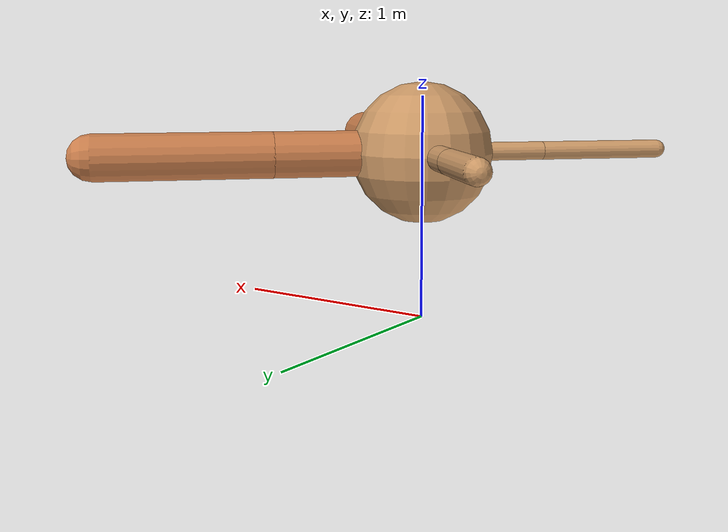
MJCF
<?xml version="1.0" ?>
<mujoco model="ant">

	<compiler angle="degree" coordinate="local" inertiafromgeom="true"/>

	<option integrator="RK4" timestep="0.01"/>

	<custom>

		<numeric data="0.0 0.0 0.55 1.0 0.0 0.0 0.0 0.0 1.0 0.0 -1.0 0.0 -1.0 0.0 1.0" name="init_qpos"/>

	</custom>

	<default>

		<joint armature="1" damping="1" limited="true"/>

		<geom conaffinity="0" condim="3" density="5.0" friction="1.5 0.1 0.1" margin="0.01" rgba="0.8 0.6 0.4 1"/>

	</default>

	<worldbody>

		<body name="torso" pos="0 0 0.75">

			<geom name="torso_geom" pos="0 0 0" size="0.31623673641234973" type="sphere"/>

			<!--joint armature="0" damping="0" limited="false" margin="0.01" name="root" pos="0 0 0" type="free"/-->

			<body name="front_left_leg" pos="0 0 0">

				<geom fromto="0 0 0 0.2 0.2 0" name="aux_1_geom" size="0.10190697522418814" type="capsule" rgba=".8 .5 .3 1"/>

				<body name="aux_1" pos="0.2 0.2 0">

					<joint axis="0 0 1" name="hip_1" pos="0.0 0.0 0.0" range="-40 40" type="hinge"/>

					<geom fromto="0 0 0 0.26904939679075607 0.26904939679075607 0" name="left_leg_geom" size="0.10190697522418814" type="capsule" rgba=".8 .5 .3 1"/>

					<body pos="0.26904939679075607 0.26904939679075607 0" name="front_left_foot">

						<joint axis="-1 1 0" name="ankle_1" pos="0.0 0.0 0.0" range="30 100" type="hinge"/>

						<geom fromto="0 0 0 0.5380987935815121 0.5380987935815121 0" name="left_ankle_geom" size="0.10190697522418814" type="capsule" rgba=".8 .5 .3 1"/>

					</body>

				</body>

			</body>

			<body name="front_right_leg" pos="0 0 0">

				<geom fromto="0 0 0 -0.2 0.2 0" name="aux_2_geom" size="0.054937765121910724" type="capsule"/>

				<body name="aux_2" pos="-0.2 0.2 0">

					<joint axis="0 0 1" name="hip_2" pos="0.0 0.0 0.0" range="-40 40" type="hinge"/>

					<geom fromto="0 0 0 -0.1334522549082669 0.1334522549082669 0" name="right_leg_geom" size="0.054937765121910724" type="capsule"/>

					<body pos="-0.1334522549082669 0.1334522549082669 0" name="front_right_foot">

						<joint axis="1 1 0" name="ankle_2" pos="0.0 0.0 0.0" range="-100 -30" type="hinge"/>

						<geom fromto="0 0 0 -0.2669045098165338 0.2669045098165338 0" name="right_ankle_geom" size="0.054937765121910724" type="capsule"/>

					</body>

				</body>

			</body>

			<body name="left_back_leg" pos="0 0 0">

				<geom fromto="0 0 0 -0.2 -0.2 0" name="aux_3_geom" size="0.04139818240246219" type="capsule"/>

				<body name="aux_3" pos="-0.2 -0.2 0">

					<joint axis="0 0 1" name="hip_3" pos="0.0 0.0 0.0" range="-40 40" type="hinge"/>

					<geom fromto="0 0 0 -0.19778050673637654 -0.19778050673637654 0" name="back_leg_geom" size="0.04139818240246219" type="capsule"/>

					<body pos="-0.19778050673637654 -0.19778050673637654 0" name="left_back_foot">

						<joint axis="-1 1 0" name="ankle_3" pos="0.0 0.0 0.0" range="-100 -30" type="hinge"/>

						<geom fromto="0 0 0 -0.3955610134727531 -0.3955610134727531 0" name="third_ankle_geom" size="0.04139818240246219" type="capsule"/>

					</body>

				</body>

			</body>

			<body name="right_back_leg" pos="0 0 0">

				<geom fromto="0 0 0 0.2 -0.2 0" name="aux_4_geom" size="0.11840813840790315" type="capsule" rgba=".8 .5 .3 1"/>

				<body name="aux_4" pos="0.2 -0.2 0">

					<joint axis="0 0 1" name="hip_4" pos="0.0 0.0 0.0" range="-40 40" type="hinge"/>

					<geom fromto="0 0 0 0.27435229441986747 -0.27435229441986747 0" name="rightback_leg_geom" size="0.11840813840790315" type="capsule" rgba=".8 .5 .3 1"/>

					<body pos="0.27435229441986747 -0.27435229441986747 0" name="right_back_foot">

						<joint axis="1 1 0" name="ankle_4" pos="0.0 0.0 0.0" range="30 100" type="hinge"/>

						<geom fromto="0 0 0 0.5487045888397349 -0.5487045888397349 0" name="fourth_ankle_geom" size="0.11840813840790315" type="capsule" rgba=".8 .5 .3 1"/>

					</body>

				</body>

			</body>

		</body>

	</worldbody>

	<actuator>

		<motor ctrllimited="true" ctrlrange="-1.0 1.0" joint="hip_4" gear="150"/>

		<motor ctrllimited="true" ctrlrange="-1.0 1.0" joint="ankle_4" gear="150"/>

		<motor ctrllimited="true" ctrlrange="-1.0 1.0" joint="hip_1" gear="150"/>

		<motor ctrllimited="true" ctrlrange="-1.0 1.0" joint="ankle_1" gear="150"/>

		<motor ctrllimited="true" ctrlrange="-1.0 1.0" joint="hip_2" gear="150"/>

		<motor ctrllimited="true" ctrlrange="-1.0 1.0" joint="ankle_2" gear="150"/>

		<motor ctrllimited="true" ctrlrange="-1.0 1.0" joint="hip_3" gear="150"/>

		<motor ctrllimited="true" ctrlrange="-1.0 1.0" joint="ankle_3" gear="150"/>

	</actuator>

</mujoco>
